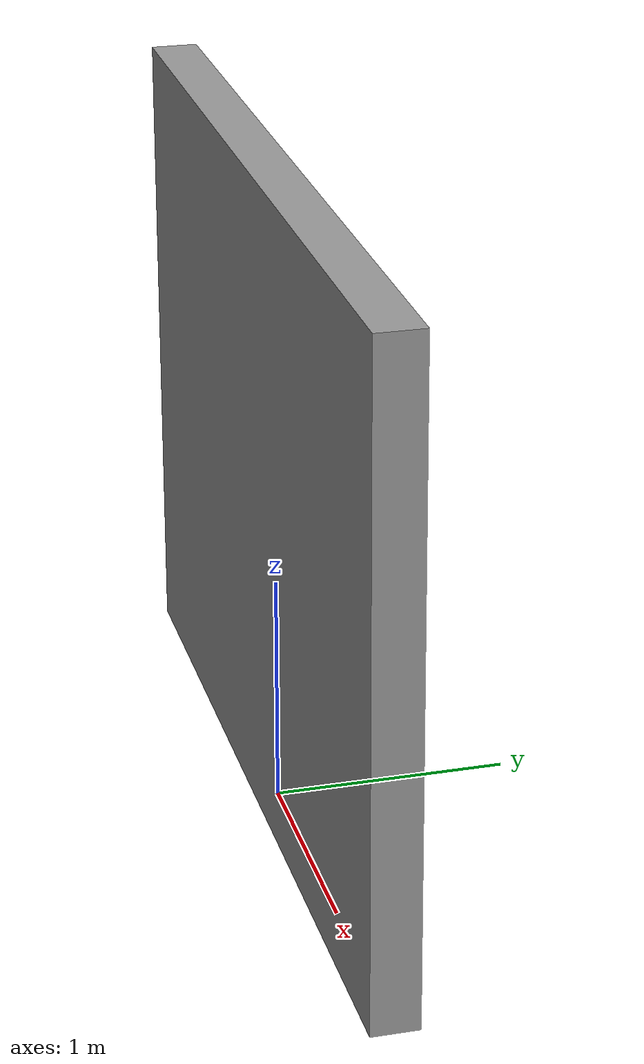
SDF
<?xml version="1.0" ?>
<sdf version="1.5">
  <model name="grey_wall_small">
    <static>true</static>
    <link name="link">
      <pose>0 0 1.4 0 0 0</pose>
      <collision name="collision">
        <geometry>
          <box>
            <size>3.75 0.2 2.8</size>
          </box>
        </geometry>
      </collision>
      <visual name="visual">
        <cast_shadows>false</cast_shadows>
        <geometry>
          <box>
            <size>3.75 0.2 2.8</size>
          </box>
        </geometry>
        <material>
          <script>
            <uri>model://grey_wall/materials/scripts</uri>
            <uri>model://grey_wall/materials/textures</uri>
            <name>vrc/grey_wall</name>
          </script>
        </material>
      </visual>
    </link>
  </model>
</sdf>
